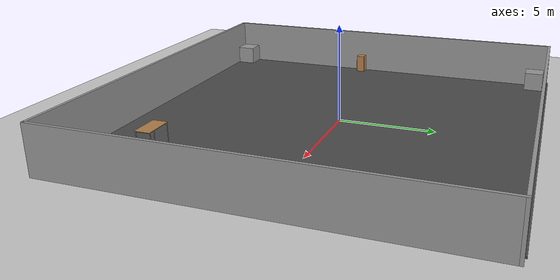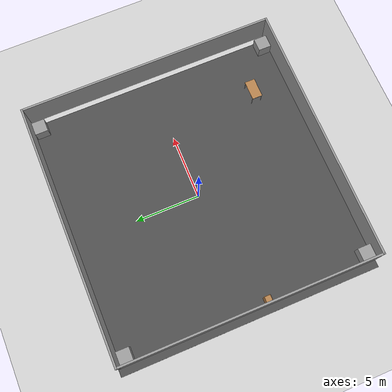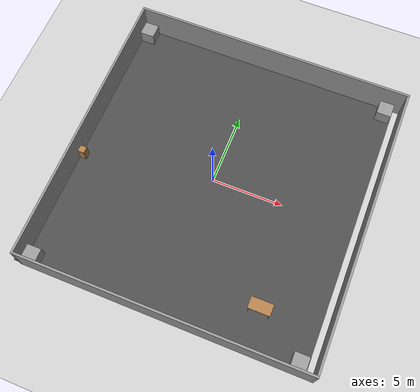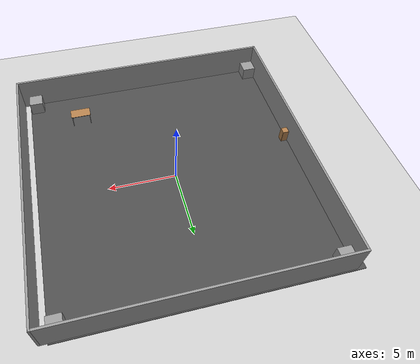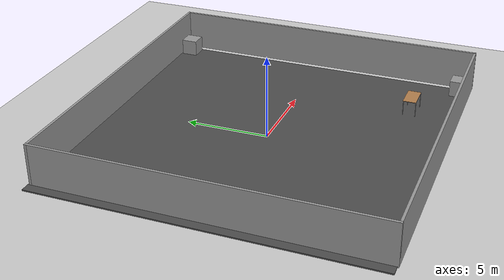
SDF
<sdf version="1.7">
 <world name="default">
  <model name="ground_plane">
   <static>1</static>
   <link name="link">
    <collision name="collision">
     <geometry><plane><normal>0 0 1</normal><size>100 100</size></plane></geometry>
     <surface><friction><ode><mu>100</mu><mu2>50</mu2></ode></friction></surface>
    </collision>
    <visual name="visual">
     <cast_shadows>0</cast_shadows>
     <geometry><plane><normal>0 0 1</normal><size>100 100</size></plane></geometry>
     <material>
      <script><uri>file://media/materials/scripts/gazebo.material</uri><name>Gazebo/Grey</name></script>
     </material>
    </visual>
   </link>
  </model>
  <model name="asphalt_plane">
   <static>1</static>
   <link name="link">
    <collision name="collision"><geometry><box><size>20 20 0.1</size></box></geometry></collision>
    <visual name="visual">
     <cast_shadows>0</cast_shadows>
     <geometry><box><size>20 20 0.1</size></box></geometry>
     <material>
      <script>
       <uri>model://asphalt_plane/materials/scripts</uri>
       <uri>model://asphalt_plane/materials/textures</uri>
       <name>vrc/asphalt</name>
      </script>
     </material>
    </visual>
   </link>
   <pose>0.027118 -0.028406 0 0 -0 0</pose>
  </model>
  <model name="4Walls">
   <pose>0.588305 -0.1078 0 0 -0 0</pose>
   <link name="Wall_17">
    <collision name="Wall_17_Collision">
     <geometry><box><size>20 0.15 2.5</size></box></geometry>
     <pose>0 0 1.25 0 -0 0</pose>
    </collision>
    <visual name="Wall_17_Visual">
     <pose>0 0 1.25 0 -0 0</pose>
     <geometry><box><size>20 0.15 2.5</size></box></geometry>
     <material>
      <script><uri>file://media/materials/scripts/gazebo.material</uri><name>Gazebo/Grey</name></script>
      <ambient>1 1 1 1</ambient>
     </material>
     <meta><layer>0</layer></meta>
    </visual>
    <pose>0 -9.925 0 0 -0 0</pose>
   </link>
   <link name="Wall_19">
    <collision name="Wall_19_Collision">
     <geometry><box><size>20 0.15 2.5</size></box></geometry>
     <pose>0 0 1.25 0 -0 0</pose>
    </collision>
    <visual name="Wall_19_Visual">
     <pose>0 0 1.25 0 -0 0</pose>
     <geometry><box><size>20 0.15 2.5</size></box></geometry>
     <material>
      <script><uri>file://media/materials/scripts/gazebo.material</uri><name>Gazebo/Grey</name></script>
      <ambient>1 1 1 1</ambient>
     </material>
     <meta><layer>0</layer></meta>
    </visual>
    <pose>9.925 -0 0 0 -0 1.5708</pose>
   </link>
   <link name="Wall_21">
    <collision name="Wall_21_Collision">
     <geometry><box><size>20 0.15 2.5</size></box></geometry>
     <pose>0 0 1.25 0 -0 0</pose>
    </collision>
    <visual name="Wall_21_Visual">
     <pose>0 0 1.25 0 -0 0</pose>
     <geometry><box><size>20 0.15 2.5</size></box></geometry>
     <material>
      <script><uri>file://media/materials/scripts/gazebo.material</uri><name>Gazebo/Grey</name></script>
      <ambient>1 1 1 1</ambient>
     </material>
     <meta><layer>0</layer></meta>
    </visual>
    <pose>0 9.925 0 0 -0 3.14159</pose>
   </link>
   <link name="Wall_22">
    <collision name="Wall_22_Collision">
     <geometry><box><size>20 0.15 2.5</size></box></geometry>
     <pose>0 0 1.25 0 -0 0</pose>
    </collision>
    <visual name="Wall_22_Visual">
     <pose>0 0 1.25 0 -0 0</pose>
     <geometry><box><size>20 0.15 2.5</size></box></geometry>
     <material>
      <script><uri>file://media/materials/scripts/gazebo.material</uri><name>Gazebo/Grey</name></script>
      <ambient>1 1 1 1</ambient>
     </material>
     <meta><layer>0</layer></meta>
    </visual>
    <pose>-9.925 -0 0 0 -0 -1.5708</pose>
   </link>
   <static>1</static>
  </model>
  <model name="unit_box">
   <pose>9.40672 -9.39922 0.55 0 -0 0.000111</pose>
   <link name="link">
    <inertial>
     <mass>1</mass>
     <inertia>
      <ixx>0.166667</ixx>
      <ixy>0</ixy>
      <ixz>0</ixz>
      <iyy>0.166667</iyy>
      <iyz>0</iyz>
      <izz>0.166667</izz>
     </inertia>
    </inertial>
    <collision name="collision"><geometry><box><size>1 1 1</size></box></geometry></collision>
    <visual name="visual">
     <geometry><box><size>1 1 1</size></box></geometry>
     <material>
      <script><name>Gazebo/Grey</name><uri>file://media/materials/scripts/gazebo.material</uri></script>
     </material>
    </visual>
   </link>
  </model>
  <model name="unit_box_clone">
   <pose>9.42461 9.16405 0.55 0 -0 5.4e-05</pose>
   <link name="link">
    <inertial>
     <mass>1</mass>
     <inertia>
      <ixx>0.166667</ixx>
      <ixy>0</ixy>
      <ixz>0</ixz>
      <iyy>0.166667</iyy>
      <iyz>0</iyz>
      <izz>0.166667</izz>
     </inertia>
    </inertial>
    <collision name="collision"><geometry><box><size>1 1 1</size></box></geometry></collision>
    <visual name="visual">
     <geometry><box><size>1 1 1</size></box></geometry>
     <material>
      <script><name>Gazebo/Grey</name><uri>file://media/materials/scripts/gazebo.material</uri></script>
     </material>
    </visual>
   </link>
  </model>
  <model name="unit_box_clone_clone">
   <pose>-8.76167 9.164 0.55 -0 -0 -2e-06</pose>
   <link name="link">
    <inertial>
     <mass>1</mass>
     <inertia>
      <ixx>0.166667</ixx>
      <ixy>0</ixy>
      <ixz>0</ixz>
      <iyy>0.166667</iyy>
      <iyz>0</iyz>
      <izz>0.166667</izz>
     </inertia>
    </inertial>
    <collision name="collision"><geometry><box><size>1 1 1</size></box></geometry></collision>
    <visual name="visual">
     <geometry><box><size>1 1 1</size></box></geometry>
     <material>
      <script><name>Gazebo/Grey</name><uri>file://media/materials/scripts/gazebo.material</uri></script>
     </material>
    </visual>
   </link>
  </model>
  <model name="unit_box_clone_clone_clone">
   <pose>-8.7587 -9.42716 0.55 0 -0 0.001283</pose>
   <link name="link">
    <inertial>
     <mass>1</mass>
     <inertia>
      <ixx>0.166667</ixx>
      <ixy>0</ixy>
      <ixz>0</ixz>
      <iyy>0.166667</iyy>
      <iyz>0</iyz>
      <izz>0.166667</izz>
     </inertia>
    </inertial>
    <collision name="collision"><geometry><box><size>1 1 1</size></box></geometry></collision>
    <visual name="visual">
     <geometry><box><size>1 1 1</size></box></geometry>
     <material>
      <script><name>Gazebo/Grey</name><uri>file://media/materials/scripts/gazebo.material</uri></script>
     </material>
    </visual>
   </link>
  </model>
  <model name="cabinet">
   <static>1</static>
   <link name="cabinet_bottom_plate">
    <inertial>
     <pose>0 0 -1 0 -0 0</pose>
     <inertia><ixx>2.05</ixx><ixy>0</ixy><ixz>0</ixz><iyy>2.05</iyy><iyz>0</iyz><izz>2.05</izz></inertia>
     <mass>25</mass>
    </inertial>
    <collision name="cabinet_bottom_plate_geom">
     <pose>0 0 0.01 0 -0 0</pose>
     <geometry><box><size>0.45 0.45 0.02</size></box></geometry>
    </collision>
    <visual name="cabinet_bottom_plate_geom_visual">
     <pose>0 0 0.01 0 -0 0</pose>
     <geometry><box><size>0.45 0.45 0.02</size></box></geometry>
     <material>
      <script><uri>file://media/materials/scripts/gazebo.material</uri><name>Gazebo/Wood</name></script>
     </material>
    </visual>
    <collision name="cabinet_bottom_plate_geom_cabinet_back_plate">
     <pose>0.235 0 0.51 0 -0 0</pose>
     <geometry><box><size>0.02 0.45 1.02</size></box></geometry>
    </collision>
    <visual name="cabinet_bottom_plate_geom_cabinet_back_plate_visual">
     <pose>0.235 0 0.51 0 -0 0</pose>
     <geometry><box><size>0.02 0.45 1.02</size></box></geometry>
     <material>
      <script><uri>file://media/materials/scripts/gazebo.material</uri><name>Gazebo/Wood</name></script>
     </material>
    </visual>
    <collision name="cabinet_bottom_plate_geom_cabinet_left_plate">
     <pose>0 0.235 0.51 0 -0 0</pose>
     <geometry><box><size>0.45 0.02 1.02</size></box></geometry>
    </collision>
    <visual name="cabinet_bottom_plate_geom_cabinet_left_plate_visual">
     <pose>0 0.235 0.51 0 -0 0</pose>
     <geometry><box><size>0.45 0.02 1.02</size></box></geometry>
     <material>
      <script><uri>file://media/materials/scripts/gazebo.material</uri><name>Gazebo/Wood</name></script>
     </material>
    </visual>
    <collision name="cabinet_bottom_plate_geom_cabinet_middle_plate">
     <pose>0 0 0.51 0 -0 0</pose>
     <geometry><box><size>0.45 0.45 0.02</size></box></geometry>
    </collision>
    <visual name="cabinet_bottom_plate_geom_cabinet_middle_plate_visual">
     <pose>0 0 0.51 0 -0 0</pose>
     <geometry><box><size>0.45 0.45 0.02</size></box></geometry>
     <material>
      <script><uri>file://media/materials/scripts/gazebo.material</uri><name>Gazebo/Wood</name></script>
     </material>
    </visual>
    <collision name="cabinet_bottom_plate_geom_cabinet_right_plate">
     <pose>0 -0.235 0.51 0 -0 0</pose>
     <geometry><box><size>0.45 0.02 1.02</size></box></geometry>
    </collision>
    <visual name="cabinet_bottom_plate_geom_cabinet_right_plate_visual">
     <pose>0 -0.235 0.51 0 -0 0</pose>
     <geometry><box><size>0.45 0.02 1.02</size></box></geometry>
     <material>
      <script><uri>file://media/materials/scripts/gazebo.material</uri><name>Gazebo/Wood</name></script>
     </material>
    </visual>
    <collision name="cabinet_bottom_plate_geom_cabinet_top_plate">
     <pose>0 0 1.01 0 -0 0</pose>
     <geometry><box><size>0.45 0.45 0.02</size></box></geometry>
    </collision>
    <visual name="cabinet_bottom_plate_geom_cabinet_top_plate_visual">
     <pose>0 0 1.01 0 -0 0</pose>
     <geometry><box><size>0.45 0.45 0.02</size></box></geometry>
     <material>
      <script><uri>file://media/materials/scripts/gazebo.material</uri><name>Gazebo/Wood</name></script>
     </material>
    </visual>
   </link>
   <pose>-9.0181 -1.55988 0 0 -0 0</pose>
  </model>
  <model name="table">
   <static>1</static>
   <link name="link">
    <collision name="surface">
     <pose>0 0 1 0 -0 0</pose>
     <geometry><box><size>1.5 0.8 0.03</size></box></geometry>
     <surface><friction><ode><mu>0.6</mu><mu2>0.6</mu2></ode></friction></surface>
    </collision>
    <visual name="visual1">
     <pose>0 0 1 0 -0 0</pose>
     <geometry><box><size>1.5 0.8 0.03</size></box></geometry>
     <material>
      <script><uri>file://media/materials/scripts/gazebo.material</uri><name>Gazebo/Wood</name></script>
     </material>
    </visual>
    <collision name="front_left_leg">
     <pose>0.68 0.38 0.5 0 -0 0</pose>
     <geometry><cylinder><radius>0.02</radius><length>1</length></cylinder></geometry>
    </collision>
    <visual name="front_left_leg">
     <pose>0.68 0.38 0.5 0 -0 0</pose>
     <geometry><cylinder><radius>0.02</radius><length>1</length></cylinder></geometry>
     <material>
      <script><uri>file://media/materials/scripts/gazebo.material</uri><name>Gazebo/Grey</name></script>
     </material>
    </visual>
    <collision name="front_right_leg">
     <pose>0.68 -0.38 0.5 0 -0 0</pose>
     <geometry><cylinder><radius>0.02</radius><length>1</length></cylinder></geometry>
    </collision>
    <visual name="front_right_leg">
     <pose>0.68 -0.38 0.5 0 -0 0</pose>
     <geometry><cylinder><radius>0.02</radius><length>1</length></cylinder></geometry>
     <material>
      <script><uri>file://media/materials/scripts/gazebo.material</uri><name>Gazebo/Grey</name></script>
     </material>
    </visual>
    <collision name="back_right_leg">
     <pose>-0.68 -0.38 0.5 0 -0 0</pose>
     <geometry><cylinder><radius>0.02</radius><length>1</length></cylinder></geometry>
    </collision>
    <visual name="back_right_leg">
     <pose>-0.68 -0.38 0.5 0 -0 0</pose>
     <geometry><cylinder><radius>0.02</radius><length>1</length></cylinder></geometry>
     <material>
      <script><uri>file://media/materials/scripts/gazebo.material</uri><name>Gazebo/Grey</name></script>
     </material>
    </visual>
    <collision name="back_left_leg">
     <pose>-0.68 0.38 0.5 0 -0 0</pose>
     <geometry><cylinder><radius>0.02</radius><length>1</length></cylinder></geometry>
    </collision>
    <visual name="back_left_leg">
     <pose>-0.68 0.38 0.5 0 -0 0</pose>
     <geometry><cylinder><radius>0.02</radius><length>1</length></cylinder></geometry>
     <material>
      <script><uri>file://media/materials/scripts/gazebo.material</uri><name>Gazebo/Grey</name></script>
     </material>
    </visual>
   </link>
   <pose>6.05238 -7.13371 0 0 -0 0</pose>
  </model>
 </world>
</sdf>
